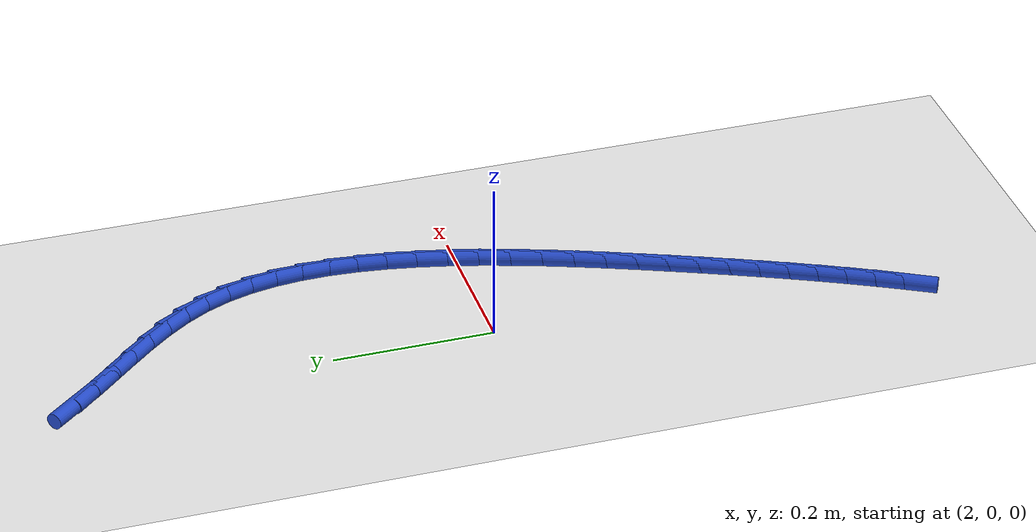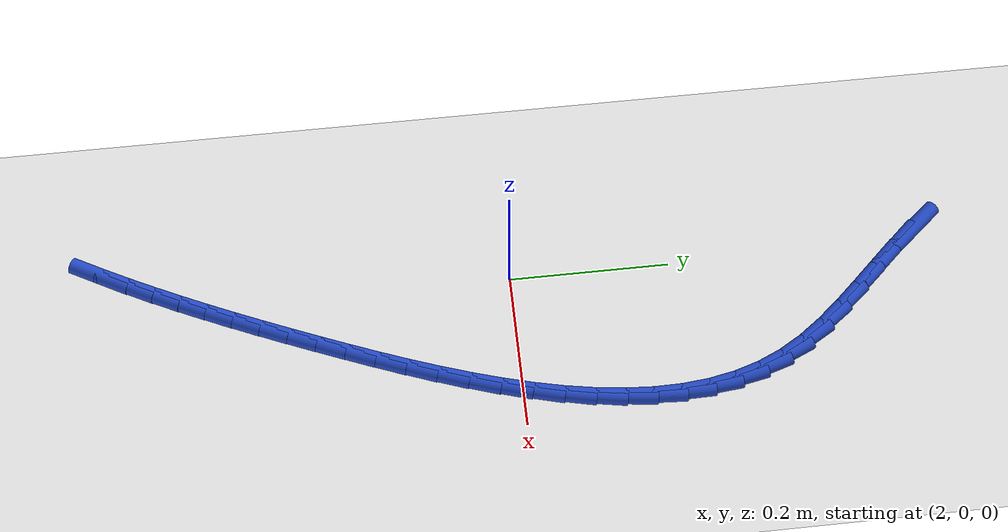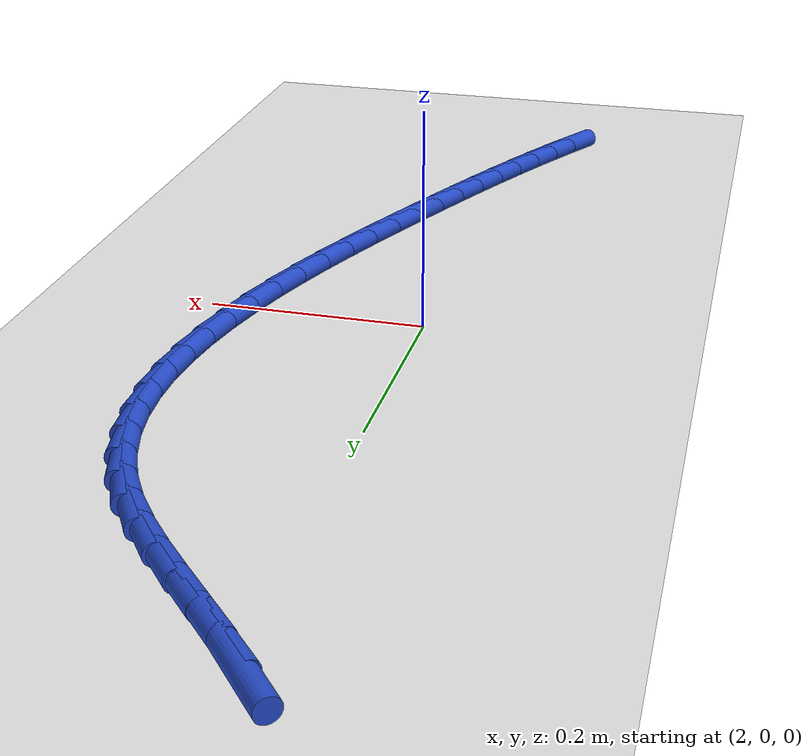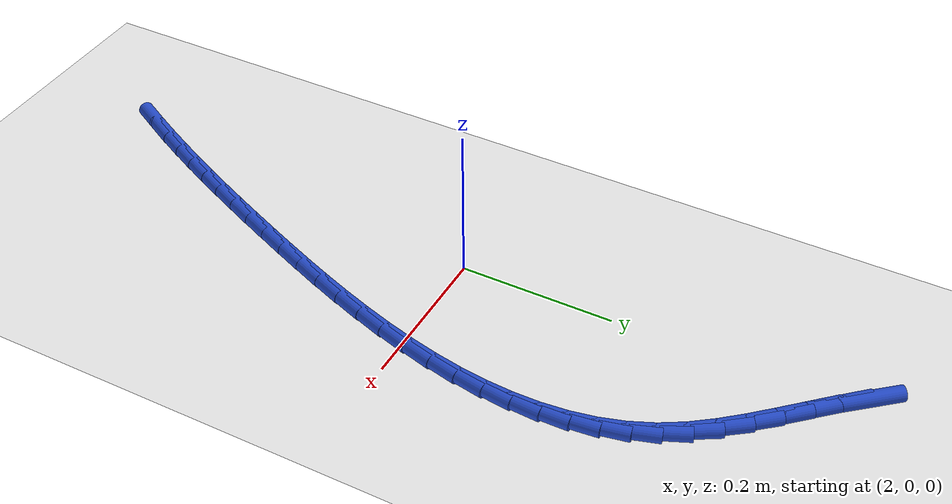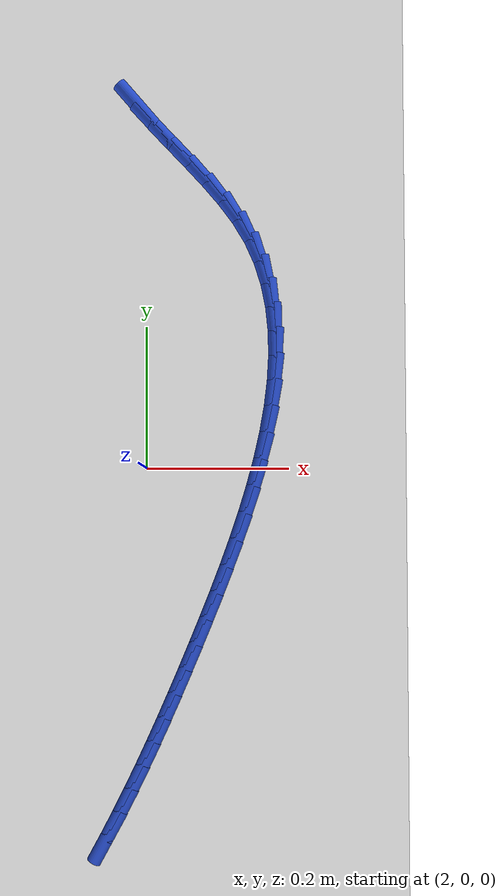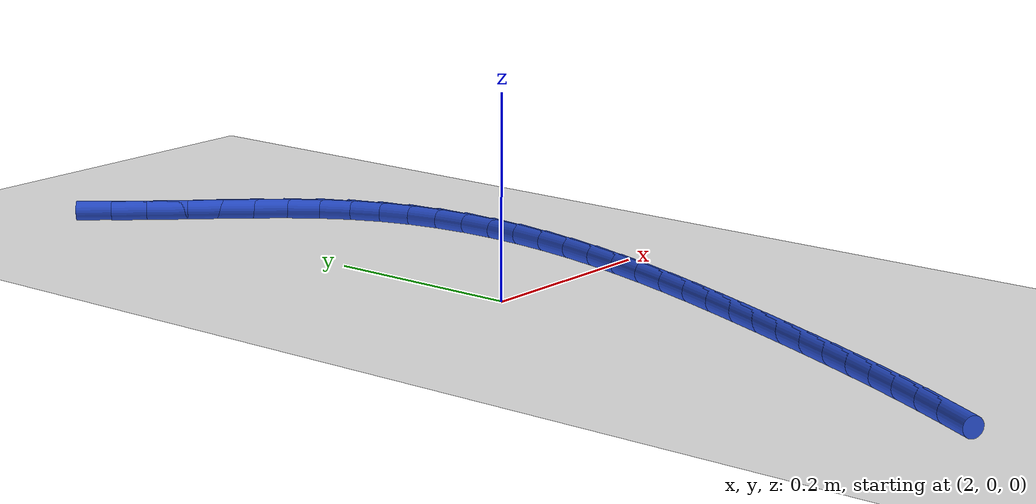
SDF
<sdf version="1.6">
 <world name="default">
  <model name="ground_plane">
   <static>1</static>
   <link name="link">
    <collision name="collision">
     <geometry><plane><normal>0 0 1</normal><size>100 100</size></plane></geometry>
     <surface><friction><ode><mu>100</mu><mu2>50</mu2></ode></friction></surface>
    </collision>
    <visual name="visual">
     <cast_shadows>0</cast_shadows>
     <geometry><plane><normal>0 0 1</normal><size>100 100</size></plane></geometry>
     <material>
      <script><uri>file://media/materials/scripts/gazebo.material</uri><name>Gazebo/WhiteGlow</name></script>
     </material>
    </visual>
   </link>
  </model>
  <model name="line">
   <link name="link_79">
    <pose>1.9868822255222307 0.5142683651235626 0.01 0 1.57 -0.8601016796847668</pose>
    <collision name="collision">
     <geometry><cylinder><radius>0.01</radius><length>0.08</length></cylinder></geometry>
    </collision>
    <visual name="visual">
     <material>
      <script><name>Gazebo/Blue</name><uri>file://media/materials/scripts/gazebo.material</uri></script>
     </material>
     <geometry><cylinder><radius>0.01</radius><length>0.08</length></cylinder></geometry>
    </visual>
   </link>
   <link name="link_80">
    <pose>2.0109302387920547 0.486329509486581 0.01 0 1.57 -0.8237319674466933</pose>
    <collision name="collision">
     <geometry><cylinder><radius>0.01</radius><length>0.08</length></cylinder></geometry>
    </collision>
    <visual name="visual">
     <material>
      <script><name>Gazebo/Blue</name><uri>file://media/materials/scripts/gazebo.material</uri></script>
     </material>
     <geometry><cylinder><radius>0.01</radius><length>0.08</length></cylinder></geometry>
    </visual>
   </link>
   <link name="link_81">
    <pose>2.0359966893969785 0.45926364964821725 0.01 0 1.57 -0.8119936177274889</pose>
    <collision name="collision">
     <geometry><cylinder><radius>0.01</radius><length>0.08</length></cylinder></geometry>
    </collision>
    <visual name="visual">
     <material>
      <script><name>Gazebo/Blue</name><uri>file://media/materials/scripts/gazebo.material</uri></script>
     </material>
     <geometry><cylinder><radius>0.01</radius><length>0.08</length></cylinder></geometry>
    </visual>
   </link>
   <link name="link_82">
    <pose>2.061227459555405 0.43265383030164284 0.01 0 1.57 -0.825089583868936</pose>
    <collision name="collision">
     <geometry><cylinder><radius>0.01</radius><length>0.08</length></cylinder></geometry>
    </collision>
    <visual name="visual">
     <material>
      <script><name>Gazebo/Blue</name><uri>file://media/materials/scripts/gazebo.material</uri></script>
     </material>
     <geometry><cylinder><radius>0.01</radius><length>0.08</length></cylinder></geometry>
    </visual>
   </link>
   <link name="link_83">
    <pose>2.085768431485741 0.40608309614003013 0.01 0 1.57 -0.8643506545480446</pose>
    <collision name="collision">
     <geometry><cylinder><radius>0.01</radius><length>0.08</length></cylinder></geometry>
    </collision>
    <visual name="visual">
     <material>
      <script><name>Gazebo/Blue</name><uri>file://media/materials/scripts/gazebo.material</uri></script>
     </material>
     <geometry><cylinder><radius>0.01</radius><length>0.08</length></cylinder></geometry>
    </visual>
   </link>
   <link name="link_84">
    <pose>2.108765487406393 0.37913449185655046 0.01 0 1.57 -0.9321235466764143</pose>
    <collision name="collision">
     <geometry><cylinder><radius>0.01</radius><length>0.08</length></cylinder></geometry>
    </collision>
    <visual name="visual">
     <material>
      <script><name>Gazebo/Blue</name><uri>file://media/materials/scripts/gazebo.material</uri></script>
     </material>
     <geometry><cylinder><radius>0.01</radius><length>0.08</length></cylinder></geometry>
    </visual>
   </link>
   <link name="link_85">
    <pose>2.1293645095357636 0.35139106214437543 0.01 0 1.57 -1.0309864031582847</pose>
    <collision name="collision">
     <geometry><cylinder><radius>0.01</radius><length>0.08</length></cylinder></geometry>
    </collision>
    <visual name="visual">
     <material>
      <script><name>Gazebo/Blue</name><uri>file://media/materials/scripts/gazebo.material</uri></script>
     </material>
     <geometry><cylinder><radius>0.01</radius><length>0.08</length></cylinder></geometry>
    </visual>
   </link>
   <link name="link_86">
    <pose>2.1467131109520183 0.32243673467447864 0.01 0 1.57 -1.1513035277787587</pose>
    <collision name="collision">
     <geometry><cylinder><radius>0.01</radius><length>0.08</length></cylinder></geometry>
    </collision>
    <visual name="visual">
     <material>
      <script><name>Gazebo/Blue</name><uri>file://media/materials/scripts/gazebo.material</uri></script>
     </material>
     <geometry><cylinder><radius>0.01</radius><length>0.08</length></cylinder></geometry>
    </visual>
   </link>
   <link name="link_87">
    <pose>2.1602785569438443 0.29201850394331674 0.01 0 1.57 -1.2676599037572311</pose>
    <collision name="collision">
     <geometry><cylinder><radius>0.01</radius><length>0.08</length></cylinder></geometry>
    </collision>
    <visual name="visual">
     <material>
      <script><name>Gazebo/Blue</name><uri>file://media/materials/scripts/gazebo.material</uri></script>
     </material>
     <geometry><cylinder><radius>0.01</radius><length>0.08</length></cylinder></geometry>
    </visual>
   </link>
   <link name="link_88">
    <pose>2.170219366156808 0.260235999238536 0.01 0 1.57 -1.3744297841963078</pose>
    <collision name="collision">
     <geometry><cylinder><radius>0.01</radius><length>0.08</length></cylinder></geometry>
    </collision>
    <visual name="visual">
     <material>
      <script><name>Gazebo/Blue</name><uri>file://media/materials/scripts/gazebo.material</uri></script>
     </material>
     <geometry><cylinder><radius>0.01</radius><length>0.08</length></cylinder></geometry>
    </visual>
   </link>
   <link name="link_89">
    <pose>2.1767842809063134 0.22723487639457127 0.01 0 1.57 -1.4702457462156229</pose>
    <collision name="collision">
     <geometry><cylinder><radius>0.01</radius><length>0.08</length></cylinder></geometry>
    </collision>
    <visual name="visual">
     <material>
      <script><name>Gazebo/Blue</name><uri>file://media/materials/scripts/gazebo.material</uri></script>
     </material>
     <geometry><cylinder><radius>0.01</radius><length>0.08</length></cylinder></geometry>
    </visual>
   </link>
   <link name="link_90">
    <pose>2.1802220435077637 0.19316079124585767 0.01 0 1.57 -1.5548168147571666</pose>
    <collision name="collision">
     <geometry><cylinder><radius>0.01</radius><length>0.08</length></cylinder></geometry>
    </collision>
    <visual name="visual">
     <material>
      <script><name>Gazebo/Blue</name><uri>file://media/materials/scripts/gazebo.material</uri></script>
     </material>
     <geometry><cylinder><radius>0.01</radius><length>0.08</length></cylinder></geometry>
    </visual>
   </link>
   <link name="link_91">
    <pose>2.1807813962765623 0.1581593996268293 0.01 0 1.57 1.513003329519344</pose>
    <collision name="collision">
     <geometry><cylinder><radius>0.01</radius><length>0.08</length></cylinder></geometry>
    </collision>
    <visual name="visual">
     <material>
      <script><name>Gazebo/Blue</name><uri>file://media/materials/scripts/gazebo.material</uri></script>
     </material>
     <geometry><cylinder><radius>0.01</radius><length>0.08</length></cylinder></geometry>
    </visual>
   </link>
   <link name="link_92">
    <pose>2.1787110815281134 0.12237635737192129 0.01 0 1.57 1.4491766458482667</pose>
    <collision name="collision">
     <geometry><cylinder><radius>0.01</radius><length>0.08</length></cylinder></geometry>
    </collision>
    <visual name="visual">
     <material>
      <script><name>Gazebo/Blue</name><uri>file://media/materials/scripts/gazebo.material</uri></script>
     </material>
     <geometry><cylinder><radius>0.01</radius><length>0.08</length></cylinder></geometry>
    </visual>
   </link>
   <link name="link_93">
    <pose>2.1742598415778205 0.08595732031556882 0.01 0 1.57 1.3942853746204937</pose>
    <collision name="collision">
     <geometry><cylinder><radius>0.01</radius><length>0.08</length></cylinder></geometry>
    </collision>
    <visual name="visual">
     <material>
      <script><name>Gazebo/Blue</name><uri>file://media/materials/scripts/gazebo.material</uri></script>
     </material>
     <geometry><cylinder><radius>0.01</radius><length>0.08</length></cylinder></geometry>
    </visual>
   </link>
   <link name="link_94">
    <pose>2.1676764187410877 0.049047944292206005 0.01 0 1.57 1.3473189144556201</pose>
    <collision name="collision">
     <geometry><cylinder><radius>0.01</radius><length>0.08</length></cylinder></geometry>
    </collision>
    <visual name="visual">
     <material>
      <script><name>Gazebo/Blue</name><uri>file://media/materials/scripts/gazebo.material</uri></script>
     </material>
     <geometry><cylinder><radius>0.01</radius><length>0.08</length></cylinder></geometry>
    </visual>
   </link>
   <link name="link_95">
    <pose>2.159209555333317 0.011793885136267966 0.01 0 1.57 1.307352574530905</pose>
    <collision name="collision">
     <geometry><cylinder><radius>0.01</radius><length>0.08</length></cylinder></geometry>
    </collision>
    <visual name="visual">
     <material>
      <script><name>Gazebo/Blue</name><uri>file://media/materials/scripts/gazebo.material</uri></script>
     </material>
     <geometry><cylinder><radius>0.01</radius><length>0.08</length></cylinder></geometry>
    </visual>
   </link>
   <link name="link_96">
    <pose>2.149107993669914 -0.025659201317810458 0.01 0 1.57 1.2735871019795686</pose>
    <collision name="collision">
     <geometry><cylinder><radius>0.01</radius><length>0.08</length></cylinder></geometry>
    </collision>
    <visual name="visual">
     <material>
      <script><name>Gazebo/Blue</name><uri>file://media/materials/scripts/gazebo.material</uri></script>
     </material>
     <geometry><cylinder><radius>0.01</radius><length>0.08</length></cylinder></geometry>
    </visual>
   </link>
   <link name="link_97">
    <pose>2.1376204760662807 -0.06316565923559443 0.01 0 1.57 1.245361715527781</pose>
    <collision name="collision">
     <geometry><cylinder><radius>0.01</radius><length>0.08</length></cylinder></geometry>
    </collision>
    <visual name="visual">
     <material>
      <script><name>Gazebo/Blue</name><uri>file://media/materials/scripts/gazebo.material</uri></script>
     </material>
     <geometry><cylinder><radius>0.01</radius><length>0.08</length></cylinder></geometry>
    </visual>
   </link>
   <link name="link_98">
    <pose>2.124995744837822 -0.10057983278264844 0.01 0 1.57 1.222154279069588</pose>
    <collision name="collision">
     <geometry><cylinder><radius>0.01</radius><length>0.08</length></cylinder></geometry>
    </collision>
    <visual name="visual">
     <material>
      <script><name>Gazebo/Blue</name><uri>file://media/materials/scripts/gazebo.material</uri></script>
     </material>
     <geometry><cylinder><radius>0.01</radius><length>0.08</length></cylinder></geometry>
    </visual>
   </link>
   <link name="link_99">
    <pose>2.11148254229994 -0.13775606612453917 0.01 0 1.57 1.2035771008568563</pose>
    <collision name="collision">
     <geometry><cylinder><radius>0.01</radius><length>0.08</length></cylinder></geometry>
    </collision>
    <visual name="visual">
     <material>
      <script><name>Gazebo/Blue</name><uri>file://media/materials/scripts/gazebo.material</uri></script>
     </material>
     <geometry><cylinder><radius>0.01</radius><length>0.08</length></cylinder></geometry>
    </visual>
   </link>
   <link name="link_100">
    <pose>2.0973296107680395 -0.17454870342683107 0.01 0 1.57 1.1893735248886401</pose>
    <collision name="collision">
     <geometry><cylinder><radius>0.01</radius><length>0.08</length></cylinder></geometry>
    </collision>
    <visual name="visual">
     <material>
      <script><name>Gazebo/Blue</name><uri>file://media/materials/scripts/gazebo.material</uri></script>
     </material>
     <geometry><cylinder><radius>0.01</radius><length>0.08</length></cylinder></geometry>
    </visual>
   </link>
   <link name="link_101">
    <pose>2.082785692557524 -0.21081208885508929 0.01 0 1.57 1.179415974317245</pose>
    <collision name="collision">
     <geometry><cylinder><radius>0.01</radius><length>0.08</length></cylinder></geometry>
    </collision>
    <visual name="visual">
     <material>
      <script><name>Gazebo/Blue</name><uri>file://media/materials/scripts/gazebo.material</uri></script>
     </material>
     <geometry><cylinder><radius>0.01</radius><length>0.08</length></cylinder></geometry>
    </visual>
   </link>
   <link name="link_102">
    <pose>2.068099375216637 -0.24640066585151435 0.01 0 1.57 1.17230626356703</pose>
    <collision name="collision">
     <geometry><cylinder><radius>0.01</radius><length>0.08</length></cylinder></geometry>
    </collision>
    <visual name="visual">
     <material>
      <script><name>Gazebo/Blue</name><uri>file://media/materials/scripts/gazebo.material</uri></script>
     </material>
     <geometry><cylinder><radius>0.01</radius><length>0.08</length></cylinder></geometry>
    </visual>
   </link>
   <link name="link_103">
    <pose>2.053440071262385 -0.2812196653166363 0.01 0 1.57 1.164376641289971</pose>
    <collision name="collision">
     <geometry><cylinder><radius>0.01</radius><length>0.08</length></cylinder></geometry>
    </collision>
    <visual name="visual">
     <material>
      <script><name>Gazebo/Blue</name><uri>file://media/materials/scripts/gazebo.material</uri></script>
     </material>
     <geometry><cylinder><radius>0.01</radius><length>0.08</length></cylinder></geometry>
    </visual>
   </link>
   <link name="link_104">
    <pose>2.03876921075274 -0.3153077301661948 0.01 0 1.57 1.1550099368191917</pose>
    <collision name="collision">
     <geometry><cylinder><radius>0.01</radius><length>0.08</length></cylinder></geometry>
    </collision>
    <visual name="visual">
     <material>
      <script><name>Gazebo/Blue</name><uri>file://media/materials/scripts/gazebo.material</uri></script>
     </material>
     <geometry><cylinder><radius>0.01</radius><length>0.08</length></cylinder></geometry>
    </visual>
   </link>
   <link name="link_105">
    <pose>2.0240144825592323 -0.3487251468703887 0.01 0 1.57 1.1442039667679111</pose>
    <collision name="collision">
     <geometry><cylinder><radius>0.01</radius><length>0.08</length></cylinder></geometry>
    </collision>
    <visual name="visual">
     <material>
      <script><name>Gazebo/Blue</name><uri>file://media/materials/scripts/gazebo.material</uri></script>
     </material>
     <geometry><cylinder><radius>0.01</radius><length>0.08</length></cylinder></geometry>
    </visual>
   </link>
   <link name="link_106">
    <pose>2.0091035755533904 -0.3815322018994188 0.01 0 1.57 1.1319785488003649</pose>
    <collision name="collision">
     <geometry><cylinder><radius>0.01</radius><length>0.08</length></cylinder></geometry>
    </collision>
    <visual name="visual">
     <material>
      <script><name>Gazebo/Blue</name><uri>file://media/materials/scripts/gazebo.material</uri></script>
     </material>
     <geometry><cylinder><radius>0.01</radius><length>0.08</length></cylinder></geometry>
    </visual>
   </link>
   <link name="link_107">
    <pose>1.9939641786067441 -0.4137891817234835 0.01 0 1.57 1.1183771128909896</pose>
    <collision name="collision">
     <geometry><cylinder><radius>0.01</radius><length>0.08</length></cylinder></geometry>
    </collision>
    <visual name="visual">
     <material>
      <script><name>Gazebo/Blue</name><uri>file://media/materials/scripts/gazebo.material</uri></script>
     </material>
     <geometry><cylinder><radius>0.01</radius><length>0.08</length></cylinder></geometry>
    </visual>
   </link>
   <link name="link_108">
    <pose>1.9785239805908246 -0.4455563728127827 0.01 0 1.57 1.103467546591528</pose>
    <collision name="collision">
     <geometry><cylinder><radius>0.01</radius><length>0.08</length></cylinder></geometry>
    </collision>
    <visual name="visual">
     <material>
      <script><name>Gazebo/Blue</name><uri>file://media/materials/scripts/gazebo.material</uri></script>
     </material>
     <geometry><cylinder><radius>0.01</radius><length>0.08</length></cylinder></geometry>
    </visual>
   </link>
   <link name="link_109">
    <pose>1.9627106703771602 -0.4768940616375155 0.01 0 1.57 1.0873421057888557</pose>
    <collision name="collision">
     <geometry><cylinder><radius>0.01</radius><length>0.08</length></cylinder></geometry>
    </collision>
    <visual name="visual">
     <material>
      <script><name>Gazebo/Blue</name><uri>file://media/materials/scripts/gazebo.material</uri></script>
     </material>
     <geometry><cylinder><radius>0.01</radius><length>0.08</length></cylinder></geometry>
    </visual>
   </link>
   <link name="link_110">
    <pose>1.9464519368372815 -0.5078625346678814 0.01 0 1.57 1.070116271084122</pose>
    <collision name="collision">
     <geometry><cylinder><radius>0.01</radius><length>0.08</length></cylinder></geometry>
    </collision>
    <visual name="visual">
     <material>
      <script><name>Gazebo/Blue</name><uri>file://media/materials/scripts/gazebo.material</uri></script>
     </material>
     <geometry><cylinder><radius>0.01</radius><length>0.08</length></cylinder></geometry>
    </visual>
   </link>
  </model>
 </world>
</sdf>
